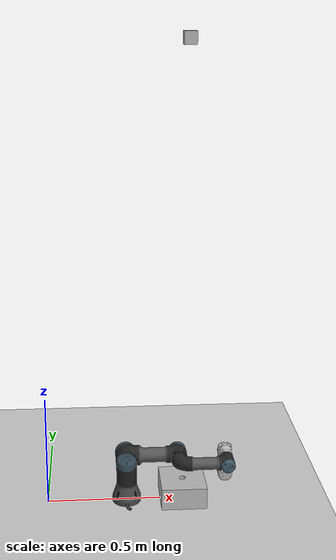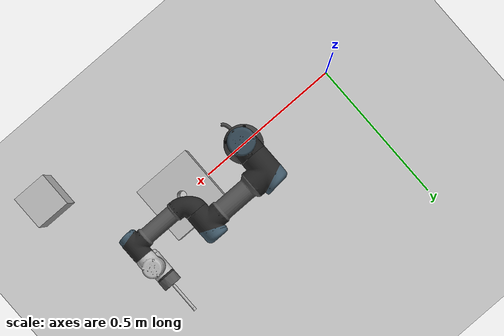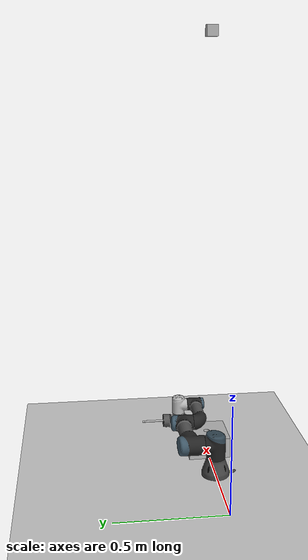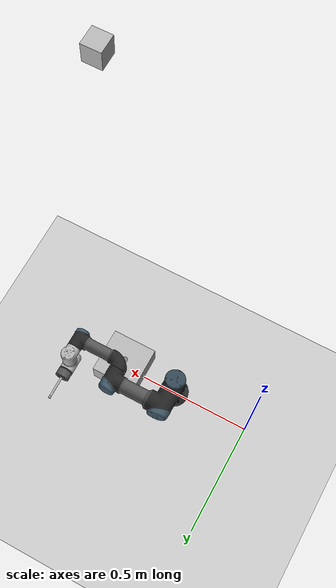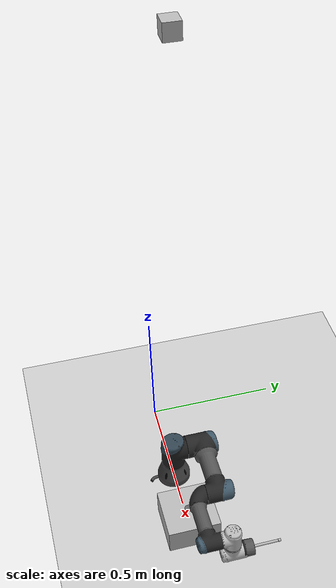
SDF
<?xml version="1.0" ?>
<sdf version="1.9">
  <world name="empty">

    <!-- Physics -->
<physics name="step1ms" type="bullet">
  <max_step_size>0.001</max_step_size>
  <real_time_factor>1</real_time_factor>
</physics>

    <!-- Defaults -->
    <plugin filename="gz-sim-physics-system" name="gz::sim::systems::Physics"/>
    <plugin filename="gz-sim-scene-broadcaster-system" name="gz::sim::systems::SceneBroadcaster"/>
    <plugin filename="gz-sim-user-commands-system" name="gz::sim::systems::UserCommands"/>

    <!-- Sensors -->
    <plugin filename="gz-sim-sensors-system" name="gz::sim::systems::Sensors">
      <render_engine>ogre2</render_engine>
    </plugin>

    <!-- Contact system (required) -->
    <plugin filename="gz-sim-contact-system" name="gz::sim::systems::Contact"/>

    <!-- Light -->
    <include>
      <uri>https://fuel.gazebosim.org/1.0/OpenRobotics/models/Sun</uri>
    </include>

    <!-- Ground -->
    <include>
      <uri>https://fuel.gazebosim.org/1.0/OpenRobotics/models/Ground Plane</uri>
    </include>

    <!-- Your visual plate model (unchanged) -->
    <include>
      <uri>model://hole_plate</uri>
      <pose>0.6 0 0.0 0 0 0</pose>
    </include>

    <include>
      <uri>model://ur3_peg_sdf</uri>
      <name>ur3</name>
      <pose>0.35 0 0 0 0 0</pose>
    </include>

    <!-- Falling box test -->
    <model name="falling_box">
      <static>false</static>
      <pose>0.6 0 2.0 0 0 0</pose>

      <link name="link">
        <inertial>
          <mass>1.0</mass>
          <inertia>
            <ixx>0.001</ixx><ixy>0</ixy><ixz>0</ixz>
            <iyy>0.001</iyy><iyz>0</iyz>
            <izz>0.001</izz>
          </inertia>
        </inertial>

        <collision name="col">
          <geometry>
            <box><size>0.05 0.05 0.05</size></box>
          </geometry>
        </collision>

        <visual name="vis">
          <geometry>
            <box><size>0.05 0.05 0.05</size></box>
          </geometry>
        </visual>
      </link>
    </model>

  </world>
</sdf>

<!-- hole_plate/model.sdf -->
<sdf version="1.9">
  <model name="hole_plate">
    <static>true</static>
    <link name="link">
      <visual name="visual_mesh">
  <geometry>
    <mesh>
      <uri>model://hole_plate/meshes/hole_plate.obj</uri>
      <scale>1 1 1</scale>
    </mesh>
  </geometry>
</visual>

<collision name="collision_mesh">
  <geometry>
    <mesh>
      <uri>model://hole_plate/meshes/hole_plate.obj</uri>
      <scale>1 1 1</scale>
    </mesh>
  </geometry>
</collision>

      <collision name="collision">
        <geometry>
          <box><size>0.3 0.3 0.02</size></box>
        </geometry>
      </collision>
    </link>
  </model>
</sdf>

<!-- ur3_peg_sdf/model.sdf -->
<sdf version="1.9">
  <model name="ur3">

    <joint name='base_joint' type='fixed'>
      <pose relative_to='__model__'>0 0 0 0 0 0</pose>
      <parent>world</parent>
      <child>base_link</child>
    </joint>

    <link name='base_link'>
      <pose relative_to='base_joint'>0 0 0 0 0 0</pose>
      <inertial>
        <pose>0 0 0 0 0 0</pose>
        <mass>2</mass>
        <inertia>
          <ixx>0.0030531654453999999</ixx>
          <ixy>0</ixy>
          <ixz>0</ixz>
          <iyy>0.0030531654453999999</iyy>
          <iyz>0</iyz>
          <izz>0.0056249999999999998</izz>
        </inertia>
      </inertial>
      <collision name='base_link_inertia_collision'>
        <pose>0 0 0 0 0 -2.4492935982947059e-16</pose>
        <geometry>
          <mesh>
            <scale>1 1 1</scale>
            <uri>model://ur_description/meshes/ur3/collision/base.stl</uri>
          </mesh>
        </geometry>
      </collision>
      <visual name='base_link_inertia_visual'>
        <pose>0 0 0 0 0 -2.4492935982947059e-16</pose>
        <geometry>
          <mesh>
            <scale>1 1 1</scale>
            <uri>model://ur_description/meshes/ur3/visual/base.dae</uri>
          </mesh>
        </geometry>
      </visual>
    </link>

    <joint name='shoulder_pan_joint' type='revolute'>
      <pose relative_to='base_link'>0 0 0.15190000000000001 0 0 3.1415926535897931</pose>
      <parent>base_link</parent>
      <child>shoulder_link</child>
      <axis>
        <xyz>0 0 1</xyz>
        <limit>
          <lower>-6.2831853071795862</lower>
          <upper>6.2831853071795862</upper>
          <effort>56</effort>
          <velocity>3.1415926535897931</velocity>
        </limit>
        <dynamics>
          <damping>0</damping>
          <friction>0</friction>
        </dynamics>
      </axis>
    </joint>

    <link name='shoulder_link'>
      <pose relative_to='shoulder_pan_joint'>0 0 0 0 0 0</pose>
      <inertial>
        <pose>0 0 -0.02 0 0 0</pose>
        <mass>2</mass>
        <inertia>
          <ixx>0.0080931666666666652</ixx>
          <ixy>0</ixy>
          <ixz>0</ixz>
          <iyy>0.0080931666666666652</iyy>
          <iyz>0</iyz>
          <izz>0.0056249999999999998</izz>
        </inertia>
      </inertial>
      <collision name='shoulder_link_collision'>
        <pose>0 0 0 0 0 3.1415926535897931</pose>
        <geometry>
          <mesh>
            <scale>1 1 1</scale>
            <uri>model://ur_description/meshes/ur3/collision/shoulder.stl</uri>
          </mesh>
        </geometry>
      </collision>
      <visual name='shoulder_link_visual'>
        <pose>0 0 0 0 0 3.1415926535897931</pose>
        <geometry>
          <mesh>
            <scale>1 1 1</scale>
            <uri>model://ur_description/meshes/ur3/visual/shoulder.dae</uri>
          </mesh>
        </geometry>
      </visual>
    </link>

    <joint name='shoulder_lift_joint' type='revolute'>
      <pose relative_to='shoulder_link'>0 0 0 1.5707963270000003 0 0</pose>
      <parent>shoulder_link</parent>
      <child>upper_arm_link</child>
      <axis>
        <xyz>0 0 1</xyz>
        <limit>
          <lower>-6.2831853071795862</lower>
          <upper>6.2831853071795862</upper>
          <effort>56</effort>
          <velocity>3.1415926535897931</velocity>
        </limit>
        <dynamics>
          <damping>0</damping>
          <friction>0</friction>
        </dynamics>
      </axis>
    </joint>

    <link name='upper_arm_link'>
      <pose relative_to='shoulder_lift_joint'>0 0 0 0 0 0</pose>
      <inertial>
        <pose>-0.11365 0 0.1157 0 1.5707963267948966 0</pose>
        <mass>3.4199999999999999</mass>
        <inertia>
          <ixx>0.021728491912500002</ixx>
          <ixy>0</ixy>
          <ixz>0</ixz>
          <iyy>0.021728491912500002</iyy>
          <iyz>0</iyz>
          <izz>0.0096187500000000006</izz>
        </inertia>
      </inertial>
      <collision name='upper_arm_link_collision'>
        <pose>0 0 0.1198 1.5707963267948959 5.5511151231257827e-17 -1.5707963267948959</pose>
        <geometry>
          <mesh>
            <scale>1 1 1</scale>
            <uri>model://ur_description/meshes/ur3/collision/upperarm.stl</uri>
          </mesh>
        </geometry>
      </collision>
      <visual name='upper_arm_link_visual'>
        <pose>0 0 0.1198 1.5707963267948959 5.5511151231257827e-17 -1.5707963267948959</pose>
        <geometry>
          <mesh>
            <scale>1 1 1</scale>
            <uri>model://ur_description/meshes/ur3/visual/upperarm.dae</uri>
          </mesh>
        </geometry>
      </visual>
    </link>

    <joint name='elbow_joint' type='revolute'>
      <pose relative_to='upper_arm_link'>-0.24365000000000001 0 0 0 0 0</pose>
      <parent>upper_arm_link</parent>
      <child>forearm_link</child>
      <axis>
        <xyz>0 0 1</xyz>
        <limit>
          <lower>-3.1415926535897931</lower>
          <upper>3.1415926535897931</upper>
          <effort>28</effort>
          <velocity>3.1415926535897931</velocity>
        </limit>
        <dynamics>
          <damping>0</damping>
          <friction>0</friction>
        </dynamics>
      </axis>
    </joint>

    <link name='forearm_link'>
      <pose relative_to='elbow_joint'>0 0 0 0 0 0</pose>
      <inertial>
        <pose>-0.16325000000000001 0 0.023800000000000002 0 1.5707963267948966 0</pose>
        <mass>1.26</mass>
        <inertia>
          <ixx>0.0065468090624999998</ixx>
          <ixy>0</ixy>
          <ixz>0</ixz>
          <iyy>0.0065468090624999998</iyy>
          <iyz>0</iyz>
          <izz>0.00354375</izz>
        </inertia>
      </inertial>
      <collision name='forearm_link_collision'>
        <pose>0 0 0.0275 1.5707963267948959 5.5511151231257827e-17 -1.5707963267948959</pose>
        <geometry>
          <mesh>
            <scale>1 1 1</scale>
            <uri>model://ur_description/meshes/ur3/collision/forearm.stl</uri>
          </mesh>
        </geometry>
      </collision>
      <visual name='forearm_link_visual'>
        <pose>0 0 0.0275 1.5707963267948959 5.5511151231257827e-17 -1.5707963267948959</pose>
        <geometry>
          <mesh>
            <scale>1 1 1</scale>
            <uri>model://ur_description/meshes/ur3/visual/forearm.dae</uri>
          </mesh>
        </geometry>
      </visual>
    </link>

    <joint name='wrist_1_joint' type='revolute'>
      <pose relative_to='forearm_link'>-0.21325 0 0.11235000000000001 0 0 0</pose>
      <parent>forearm_link</parent>
      <child>wrist_1_link</child>
      <axis>
        <xyz>0 0 1</xyz>
        <limit>
          <lower>-6.2831853071795862</lower>
          <upper>6.2831853071795862</upper>
          <effort>12</effort>
          <velocity>6.2831853071795862</velocity>
        </limit>
        <dynamics>
          <damping>0</damping>
          <friction>0</friction>
        </dynamics>
      </axis>
    </joint>

    <link name='wrist_1_link'>
      <pose relative_to='wrist_1_joint'>0 0 0 0 0 0</pose>
      <inertial>
        <pose>0 -0.01 0 0 0 0</pose>
        <mass>0.80000000000000004</mass>
        <inertia>
          <ixx>0.0016106415000000001</ixx>
          <ixy>0</ixy>
          <ixz>0</ixz>
          <iyy>0.0016106415000000001</iyy>
          <iyz>0</iyz>
          <izz>0.0022499999999999998</izz>
        </inertia>
      </inertial>
      <collision name='wrist_1_link_collision'>
        <pose>0 0 -0.085000000000000006 1.5707963267948959 0 0</pose>
        <geometry>
          <mesh>
            <scale>1 1 1</scale>
            <uri>model://ur_description/meshes/ur3/collision/wrist1.stl</uri>
          </mesh>
        </geometry>
      </collision>
      <visual name='wrist_1_link_visual'>
        <pose>0 0 -0.085000000000000006 1.5707963267948959 0 0</pose>
        <geometry>
          <mesh>
            <scale>1 1 1</scale>
            <uri>model://ur_description/meshes/ur3/visual/wrist1.dae</uri>
          </mesh>
        </geometry>
      </visual>
    </link>

    <joint name='wrist_2_joint' type='revolute'>
      <pose relative_to='wrist_1_link'>0 -0.085349999999999995 -1.750557762378351e-11 1.5707963270000003 0 0</pose>
      <parent>wrist_1_link</parent>
      <child>wrist_2_link</child>
      <axis>
        <xyz>0 0 1</xyz>
        <limit>
          <lower>-6.2831853071795862</lower>
          <upper>6.2831853071795862</upper>
          <effort>12</effort>
          <velocity>6.2831853071795862</velocity>
        </limit>
        <dynamics>
          <damping>0</damping>
          <friction>0</friction>
        </dynamics>
      </axis>
    </joint>

    <link name='wrist_2_link'>
      <pose relative_to='wrist_2_joint'>0 0 0 0 0 0</pose>
      <inertial>
        <pose>0 0.01 0 0 0 0</pose>
        <mass>0.80000000000000004</mass>
        <inertia>
          <ixx>0.001572174</ixx>
          <ixy>0</ixy>
          <ixz>0</ixz>
          <iyy>0.001572174</iyy>
          <iyz>0</iyz>
          <izz>0.0022499999999999998</izz>
        </inertia>
      </inertial>
      <collision name='wrist_2_link_collision'>
        <pose>0 0 -0.083000000000000004 0 0 0</pose>
        <geometry>
          <mesh>
            <scale>1 1 1</scale>
            <uri>model://ur_description/meshes/ur3/collision/wrist2.stl</uri>
          </mesh>
        </geometry>
      </collision>
      <visual name='wrist_2_link_visual'>
        <pose>0 0 -0.083000000000000004 0 0 0</pose>
        <geometry>
          <mesh>
            <scale>1 1 1</scale>
            <uri>model://ur_description/meshes/ur3/visual/wrist2.dae</uri>
          </mesh>
        </geometry>
      </visual>
    </link>

    <joint name='wrist_3_joint' type='revolute'>
      <pose relative_to='wrist_2_link'>0 0.081900000000000001 -1.679797079540562e-11 -1.5707963270000003 1.2246467991473527e-16 -1.224646799147353e-16</pose>
      <parent>wrist_2_link</parent>
      <child>wrist_3_link</child>
      <axis>
        <xyz>0 0 1</xyz>
        <limit>
          <effort>12</effort>
          <velocity>6.2831853071795862</velocity>
          <lower>-inf</lower>
          <upper>inf</upper>
        </limit>
        <dynamics>
          <damping>0</damping>
          <friction>0</friction>
        </dynamics>
      </axis>
    </joint>

    <link name='wrist_3_link'>
      <pose relative_to='wrist_3_joint'>0 0 0 0 0 0</pose>
      <inertial>
        <pose>0 0 -0.02 0 0 0</pose>
        <mass>0.34999999999999998</mass>
        <inertia>
          <ixx>0.00013626666666666671</ixx>
          <ixy>0</ixy>
          <ixz>0</ixz>
          <iyy>0.00013626666666666671</iyy>
          <iyz>0</iyz>
          <izz>0.00017919999999999999</izz>
        </inertia>
      </inertial>
      <collision name='wrist_3_link_collision'>
        <pose>0 -0.0025500000000000002 -0.082000000000000003 1.5707963267948959 0 0</pose>
        <geometry>
          <mesh>
            <scale>1 1 1</scale>
            <uri>model://ur_description/meshes/ur3/collision/wrist3.stl</uri>
          </mesh>
        </geometry>
      </collision>
      <visual name='wrist_3_link_visual'>
        <pose>0 -0.0025500000000000002 -0.082000000000000003 1.5707963267948959 0 0</pose>
        <geometry>
          <mesh>
            <scale>1 1 1</scale>
            <uri>model://ur_description/meshes/ur3/visual/wrist3.dae</uri>
          </mesh>
        </geometry>
      </visual>

      <sensor name='tool0_imu' type='imu'>
        <always_on>true</always_on>
        <update_rate>200</update_rate>
        <topic>imu</topic>
        <pose>0 0 0 3.6732099999999997e-06 3.6732100000000001e-06 2.8072399999918843e-16</pose>
        <imu/>
      </sensor>
    </link>

    <!-- Peg link already correctly attached to wrist_3_link by your conversion -->
    <joint name='tool0_to_peg' type='fixed'>
      <pose relative_to='wrist_3_link'>0 0 0 -2.4651903288156619e-32 -2.2204460492503131e-16 2.2204460492503131e-16</pose>
      <parent>wrist_3_link</parent>
      <child>peg_link</child>
    </joint>

    <link name='peg_link'>
      <pose relative_to='tool0_to_peg'>0 0 0 0 0 0</pose>
      <inertial>
        <pose>0 0 0.050000000000000003 0 0 0</pose>
        <mass>0.050000000000000003</mass>
        <inertia>
          <ixx>1.0000000000000001e-05</ixx>
          <ixy>0</ixy>
          <ixz>0</ixz>
          <iyy>1.0000000000000001e-05</iyy>
          <iyz>0</iyz>
          <izz>1.0000000000000001e-05</izz>
        </inertia>
      </inertial>

      <!-- Keep the converted collision names (they already exist and collide) -->
      <collision name='peg_link_collision'>
        <pose>0 0 0.050000000000000003 0 0 0</pose>
        <geometry>
          <cylinder>
            <length>0.10000000000000001</length>
            <radius>0.0050000000000000001</radius>
          </cylinder>
        </geometry>
      </collision>

      <visual name='peg_link_visual'>
        <pose>0 0 0.050000000000000003 0 0 0</pose>
        <geometry>
          <cylinder>
            <length>0.10000000000000001</length>
            <radius>0.0050000000000000001</radius>
          </cylinder>
        </geometry>
      </visual>
    </link>

    <joint name='peg_to_sensor' type='fixed'>
      <pose relative_to='peg_link'>0 0 0 0 0 0</pose>
      <parent>peg_link</parent>
      <child>peg_sensor_link</child>
    </joint>

    <!-- FIXED: peg_sensor_link now has collision geometry + unfiltered contact sensor -->
    <link name='peg_sensor_link'>
      <pose relative_to='peg_to_sensor'>0 0 0 0 0 0</pose>

      <inertial>
        <pose>0 0 0 0 0 0</pose>
        <mass>0.001</mass>
        <inertia>
          <ixx>1e-7</ixx>
          <ixy>0</ixy>
          <ixz>0</ixz>
          <iyy>1e-7</iyy>
          <iyz>0</iyz>
          <izz>1e-7</izz>
        </inertia>
      </inertial>

      <!-- Big debug collision: impossible to miss. Once it works, shrink to a thin disk. -->
      <collision name='peg_tip_col'>
        <pose>0 0 0.10 0 0 0</pose>
        <geometry>
          <cylinder>
            <radius>0.0055</radius>
            <length>0.01</length>
          </cylinder>
        </geometry>
      </collision>

      <visual name='peg_tip_vis'>
        <pose>0 0 0.10 0 0 0</pose>
        <geometry>
          <cylinder>
            <radius>0.0055</radius>
            <length>0.01</length>
          </cylinder>
        </geometry>
      </visual>

      <sensor name='peg_tip_contact' type='contact'>
        <always_on>true</always_on>
        <update_rate>200</update_rate>
        <topic>peg_tip_contact</topic>
        <contact>
            <collision>peg_tip_col</collision>
        </contact>
      </sensor>

    </link>

    <!-- Keep your gz_ros2_control plugin with the real absolute YAML path -->
    <plugin name='gz_ros2_control::GazeboSimROS2ControlPlugin' filename='gz_ros2_control-system'>
      <robot_param>robot_description</robot_param>
      <robot_param_node>robot_state_publisher</robot_param_node>
      <parameters>/home/francesco/ros2_ws/install/my_arm_description/share/my_arm_description/config/controllers.yaml</parameters>
      <controller_manager_name>controller_manager</controller_manager_name>
    </plugin>

    <!-- Frames: keep as generated -->
    <frame name='base_link-base_fixed_joint' attached_to='base_link'>
      <pose>0 0 0 0 0 3.1415926535897931</pose>
    </frame>
    <frame name='base' attached_to='base_link-base_fixed_joint'>
      <pose>0 0 0 0 0 0</pose>
    </frame>
    <frame name='base_link-base_link_inertia' attached_to='base_link'>
      <pose>0 0 0 0 0 3.1415926535897931</pose>
    </frame>
    <frame name='base_link_inertia' attached_to='base_link-base_link_inertia'>
      <pose>0 0 0 0 0 0</pose>
    </frame>
    <frame name='flange-tool0' attached_to='flange'>
      <pose>0 0 0 1.5707963267948959 -5.5511151231257827e-17 1.5707963267948959</pose>
    </frame>
    <frame name='tool0' attached_to='flange-tool0'>
      <pose>0 0 0 0 0 0</pose>
    </frame>
    <frame name='wrist_3-flange' attached_to='wrist_3_link'>
      <pose>0 0 0 -1.5707963267948957 -1.5707963267948966 0</pose>
    </frame>
    <frame name='flange' attached_to='wrist_3-flange'>
      <pose>0 0 0 0 0 0</pose>
    </frame>
    <frame name='wrist_3_link-ft_frame' attached_to='wrist_3_link'>
      <pose>0 0 0 3.1415926535897931 0 0</pose>
    </frame>
    <frame name='ft_frame' attached_to='wrist_3_link-ft_frame'>
      <pose>0 0 0 0 0 0</pose>
    </frame>

  </model>
</sdf>
